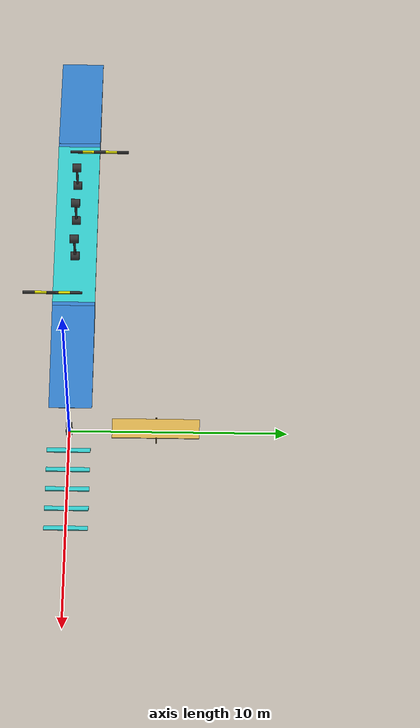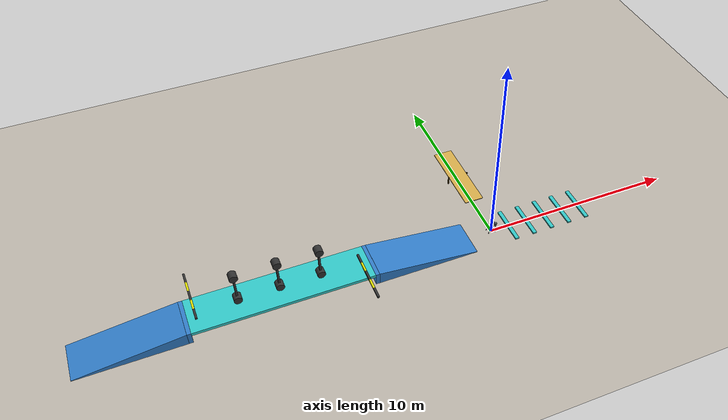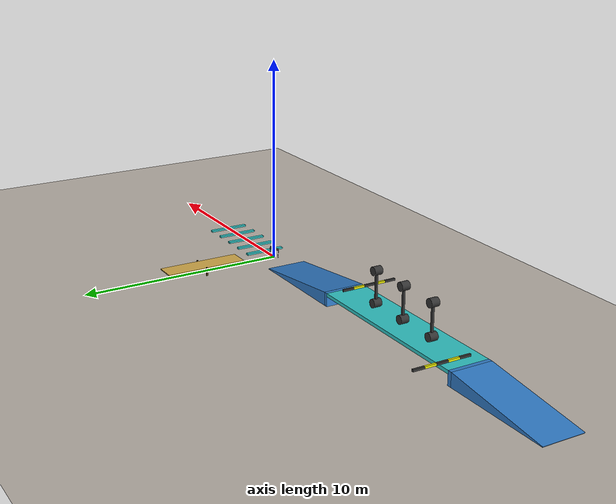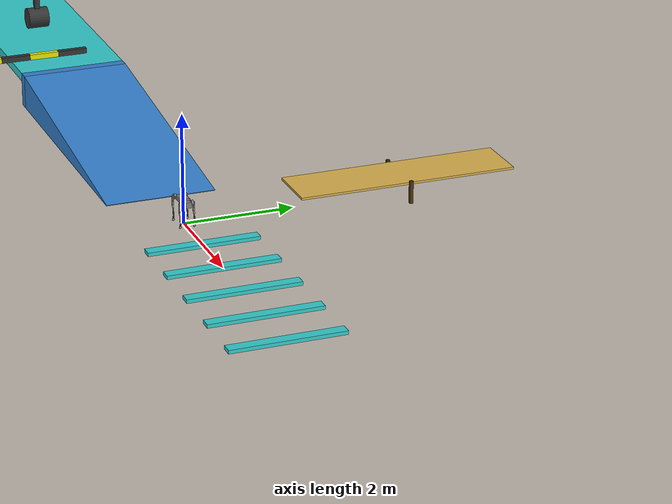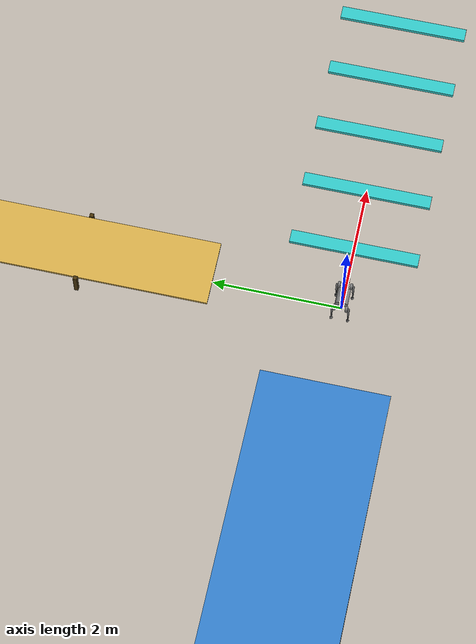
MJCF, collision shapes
<mujoco model="go1 feetonly flat terrain scene">
  <include file="go1_mjx_fullcollisions.xml"/>
  <include file="objects.xml"/>
  <option timestep="0.002"/>
  <statistic center="0 0 0.1" extent="0.8" meansize="0.04"/>

  <visual>
    <headlight diffuse="0.6 0.6 0.6" ambient="0.3 0.3 0.3" specular="0 0 0"/>
    <rgba haze="0.15 0.25 0.35 1"/>
    <global azimuth="120" elevation="-20"/>
    <map force="0.01"/>
    <scale forcewidth="0.3" contactwidth="0.5" contactheight="0.2"/>
    <quality shadowsize="2048"/>
  </visual>

  <asset>
      <texture type="skybox" builtin="gradient" rgb1="0.3 0.5 0.7" rgb2="0 0 0" width="512" height="3072"/>
      <texture name="grid" type="2d" file="../common/plane.png" width="512" height="512"/>
      <material name="grid" texture="grid" texrepeat="0.5 0.5" texuniform="true" reflectance=".2"/>
  </asset>

  <worldbody>
      <light pos="0 0 1.5" dir="0 0 -1" directional="true"/>
      <geom
        name="floor"
        size="0 0 0.01"
        type="plane"
        material="grid"
        contype="1"
        conaffinity="0"
        priority="1"
        friction="0.6"
        condim="3"
      />
  </worldbody>
</mujoco>

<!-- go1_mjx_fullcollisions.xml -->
<mujoco model="go1">
  <compiler angle="radian" autolimits="true"/>

  <option timestep="0.004" integrator="Euler" iterations="50">
    <flag eulerdamp="disable"/>
  </option>

  <custom>
    <numeric data="30" name="max_contact_points"/>
    <numeric data="12" name="max_geom_pairs"/>
  </custom>

  <default>
    <default class="go1">
      <geom condim="1"/>
      <joint axis="0 1 0" armature="0.005" damping="0.5"/>
      <position forcerange="-23.7 23.7" inheritrange="1" kp="35"/>
      <default class="abduction">
        <joint axis="1 0 0" range="-0.863 0.863" frictionloss="0.3"/>
      </default>
      <default class="hip">
        <joint range="-0.686 4.501" frictionloss="0.3"/>
      </default>
      <default class="knee">
        <joint range="-2.818 -0.888" frictionloss="1.0"/>
        <position forcerange="-35.55 35.55"/>
      </default>
      <default class="visual">
        <geom type="mesh" contype="0" conaffinity="0" group="2" material="dark"/>
      </default>
      <default class="collision">
        <geom group="3" type="capsule"/>
        <default class="hip_left1">
          <geom size="0.046 0.02" pos="0 0.045 0" quat="1 1 0 0" type="cylinder"/>
        </default>
        <default class="hip_left2">
          <geom size="0.031 0.02" pos="0 0.065 0" quat="1 1 0 0" type="cylinder"/>
        </default>
        <default class="hip_left3">
          <geom size="0.046 0.02" quat="1 1 0 0" type="cylinder"/>
        </default>
        <default class="hip_right1">
          <geom size="0.046 0.02" pos="0 -0.045 0" quat="1 1 0 0" type="cylinder"/>
        </default>
        <default class="hip_right2">
          <geom size="0.031 0.02" pos="0 -0.065 0" quat="1 1 0 0" type="cylinder"/>
        </default>
        <default class="hip_right3">
          <geom size="0.046 0.02" quat="1 1 0 0" type="cylinder"/>
        </default>
        <default class="thigh1">
          <geom size="0.015" fromto="-0.02 0 0 -0.02 0 -0.16"/>
        </default>
        <default class="thigh2">
          <geom size="0.015" fromto="0 0 0 -0.02 0 -0.1"/>
        </default>
        <default class="thigh3">
          <geom size="0.015" fromto="-0.02 0 -0.16 0 0 -0.2"/>
        </default>
        <default class="calf1">
          <geom size="0.01" fromto="0 0 0 0.02 0 -0.13"/>
        </default>
        <default class="calf2">
          <geom size="0.01" fromto="0.02 0 -0.13 0 0 -0.2"/>
        </default>
        <default class="foot">
          <geom type="sphere" size="0.023" pos="0 0 -0.213" solimp="0.9 .99 0.001" priority="10" condim="3"/>
        </default>
      </default>
    </default>
  </default>

  <asset>
    <material name="dark" rgba="0.2 0.2 0.2 1"/>
    <mesh class="go1" file="../go1/assets/trunk.stl"/>
    <mesh class="go1" file="../go1/assets/hip.stl"/>
    <mesh class="go1" file="../go1/assets/thigh_mirror.stl"/>
    <mesh class="go1" file="../go1/assets/calf.stl"/>
    <mesh class="go1" file="../go1/assets/thigh.stl"/>
  </asset>

  <worldbody>
    <light name="spotlight" mode="targetbodycom" target="trunk" pos="3 0 4"/>
    <body name="trunk" pos="0 0 0.445" childclass="go1">
      <camera name="track" pos="0.846 -1.3 0.316" xyaxes="0.866 0.500 0.000 -0.171 0.296 0.940" mode="track"/>
      <camera name="top" pos="-1 0 1" xyaxes="0 -1 0 0.7 0 0.7" mode="track"/>
      <camera name="side" pos="0 -2 1" xyaxes="1 0 0 0 1 2" mode="track"/>
      <camera name="back" pos="-2.4 0 0.8" target="trunk" mode="targetbody"/>
      <site name="head" pos="0.3 0 0" rgba="1 0 0 1" size="0.02" group="5"/>
      <inertial pos="0.0223 0.002 -0.0005" quat="-0.00342088 0.705204 0.000106698 0.708996" mass="5.204"
        diaginertia="0.0716565 0.0630105 0.0168101"/>
      <freejoint/>
      <geom class="visual" mesh="trunk"/>
      <geom class="collision" quat="1 0 0 0" pos="0.24 0 0" size="0.05 0.05 0.05" type="box"/>
      <geom class="collision" quat="1 0 1 0" pos="0 -0.04 0" size="0.058 0.125" type="cylinder"/>
      <geom class="collision" quat="1 0 1 0" pos="0 +0.04 0" size="0.058 0.125" type="cylinder"/>
      <site name="imu" pos="-0.01592 -0.06659 -0.00617" group="5"/>
      <body name="FR_hip" pos="0.1881 -0.04675 0">
        <inertial pos="-0.0049166 0.00762615 -8.865e-05" quat="0.507341 0.514169 0.495027 0.482891" mass="0.68"
          diaginertia="0.000734064 0.000468438 0.000398719"/>
        <joint class="abduction" name="FR_hip_joint"/>
        <geom class="visual" mesh="hip" quat="1 0 0 0"/>
        <geom name="fr_hip" class="hip_right1"/>
        <body name="FR_thigh" pos="0 -0.08 0">
          <inertial pos="-0.00304722 0.019315 -0.0305004" quat="0.65243 -0.0272313 0.0775126 0.753383" mass="1.009"
            diaginertia="0.00478717 0.00460903 0.000709268"/>
          <joint class="hip" name="FR_thigh_joint"/>
          <geom class="visual" mesh="thigh_mirror"/>
          <geom name="fr_thigh1" class="thigh1"/>
          <geom name="fr_thigh2" class="thigh2"/>
          <geom name="fr_thigh3" class="thigh3"/>
          <body name="FR_calf" pos="0 0 -0.213">
            <inertial pos="0.00429862 0.000976676 -0.146197" quat="0.691246 0.00357467 0.00511118 0.722592"
              mass="0.195862" diaginertia="0.00149767 0.00148468 3.58427e-05"/>
            <joint class="knee" name="FR_calf_joint"/>
            <geom class="visual" mesh="calf"/>
            <geom name="fr_calf1" class="calf1"/>
            <geom name="fr_calf2" class="calf2"/>
            <geom name="FR" class="foot"/>
            <site name="FR" pos="0 0 -0.213" type="sphere" size="0.023" group="5"/>
          </body>
        </body>
      </body>
      <body name="FL_hip" pos="0.1881 0.04675 0">
        <inertial pos="-0.0049166 -0.00762615 -8.865e-05" quat="0.482891 0.495027 0.514169 0.507341" mass="0.68"
          diaginertia="0.000734064 0.000468438 0.000398719"/>
        <joint class="abduction" name="FL_hip_joint"/>
        <geom class="visual" mesh="hip"/>
        <geom name="fl_hip" class="hip_left1"/>
        <body name="FL_thigh" pos="0 0.08 0">
          <inertial pos="-0.00304722 -0.019315 -0.0305004" quat="0.753383 0.0775126 -0.0272313 0.65243" mass="1.009"
            diaginertia="0.00478717 0.00460903 0.000709268"/>
          <joint class="hip" name="FL_thigh_joint"/>
          <geom class="visual" mesh="thigh"/>
          <geom name="fl_thigh1" class="thigh1"/>
          <geom name="fl_thigh2" class="thigh2"/>
          <geom name="fl_thigh3" class="thigh3"/>
          <body name="FL_calf" pos="0 0 -0.213">
            <inertial pos="0.00429862 0.000976676 -0.146197" quat="0.691246 0.00357467 0.00511118 0.722592"
              mass="0.195862" diaginertia="0.00149767 0.00148468 3.58427e-05"/>
            <joint class="knee" name="FL_calf_joint"/>
            <geom class="visual" mesh="calf"/>
            <geom name="fl_calf1" class="calf1"/>
            <geom name="fl_calf2" class="calf2"/>
            <geom name="FL" class="foot"/>
            <site name="FL" pos="0 0 -0.213" type="sphere" size="0.023" group="5"/>
          </body>
        </body>
      </body>
      <body name="RR_hip" pos="-0.1881 -0.04675 0">
        <inertial pos="0.0049166 0.00762615 -8.865e-05" quat="0.495027 0.482891 0.507341 0.514169" mass="0.68"
          diaginertia="0.000734064 0.000468438 0.000398719"/>
        <joint class="abduction" name="RR_hip_joint"/>
        <geom class="visual" quat="0 0 0 -1" mesh="hip"/>
        <geom name="rr_hip" class="hip_right1"/>
        <body name="RR_thigh" pos="0 -0.08 0">
          <inertial pos="-0.00304722 0.019315 -0.0305004" quat="0.65243 -0.0272313 0.0775126 0.753383" mass="1.009"
            diaginertia="0.00478717 0.00460903 0.000709268"/>
          <joint class="hip" name="RR_thigh_joint"/>
          <geom class="visual" mesh="thigh_mirror"/>
          <geom name="rr_thigh1" class="thigh1"/>
          <geom name="rr_thigh2" class="thigh2"/>
          <geom name="rr_thigh3" class="thigh3"/>
          <body name="RR_calf" pos="0 0 -0.213">
            <inertial pos="0.00429862 0.000976676 -0.146197" quat="0.691246 0.00357467 0.00511118 0.722592"
              mass="0.195862" diaginertia="0.00149767 0.00148468 3.58427e-05"/>
            <joint class="knee" name="RR_calf_joint"/>
            <geom class="visual" mesh="calf"/>
            <geom name="rr_calf1" class="calf1"/>
            <geom name="rr_calf2" class="calf2"/>
            <geom name="RR" class="foot"/>
            <site name="RR" pos="0 0 -0.213" type="sphere" size="0.023" group="5"/>
          </body>
        </body>
      </body>
      <body name="RL_hip" pos="-0.1881 0.04675 0">
        <inertial pos="0.0049166 -0.00762615 -8.865e-05" quat="0.514169 0.507341 0.482891 0.495027" mass="0.68"
          diaginertia="0.000734064 0.000468438 0.000398719"/>
        <joint class="abduction" name="RL_hip_joint"/>
        <geom class="visual" quat="0 0 1 0" mesh="hip"/>
        <geom name="rl_hip" class="hip_left1"/>
        <body name="RL_thigh" pos="0 0.08 0">
          <inertial pos="-0.00304722 -0.019315 -0.0305004" quat="0.753383 0.0775126 -0.0272313 0.65243" mass="1.009"
            diaginertia="0.00478717 0.00460903 0.000709268"/>
          <joint class="hip" name="RL_thigh_joint"/>
          <geom class="visual" mesh="thigh"/>
          <geom name="rl_thigh1" class="thigh1"/>
          <geom name="rl_thigh2" class="thigh2"/>
          <geom name="rl_thigh3" class="thigh3"/>
          <body name="RL_calf" pos="0 0 -0.213">
            <inertial pos="0.00429862 0.000976676 -0.146197" quat="0.691246 0.00357467 0.00511118 0.722592"
              mass="0.195862" diaginertia="0.00149767 0.00148468 3.58427e-05"/>
            <joint class="knee" name="RL_calf_joint"/>
            <geom class="visual" mesh="calf"/>
            <geom name="rl_calf1" class="calf1"/>
            <geom name="rl_calf2" class="calf2"/>
            <geom name="RL" class="foot"/>
            <site name="RL" pos="0 0 -0.213" type="sphere" size="0.023" group="5"/>
          </body>
        </body>
      </body>
    </body>
  </worldbody>

  <actuator>
    <position class="abduction" name="FR_hip" joint="FR_hip_joint"/>
    <position class="hip" name="FR_thigh" joint="FR_thigh_joint"/>
    <position class="knee" name="FR_calf" joint="FR_calf_joint"/>
    <position class="abduction" name="FL_hip" joint="FL_hip_joint"/>
    <position class="hip" name="FL_thigh" joint="FL_thigh_joint"/>
    <position class="knee" name="FL_calf" joint="FL_calf_joint"/>
    <position class="abduction" name="RR_hip" joint="RR_hip_joint"/>
    <position class="hip" name="RR_thigh" joint="RR_thigh_joint"/>
    <position class="knee" name="RR_calf" joint="RR_calf_joint"/>
    <position class="abduction" name="RL_hip" joint="RL_hip_joint"/>
    <position class="hip" name="RL_thigh" joint="RL_thigh_joint"/>
    <position class="knee" name="RL_calf" joint="RL_calf_joint"/>
  </actuator>

  <sensor>
    <gyro site="imu" name="gyro"/>
    <velocimeter site="imu" name="local_linvel"/>
    <framepos objtype="site" objname="imu" name="position"/>
    <framelinvel objtype="site" objname="imu" name="global_linvel"/>
    <frameangvel objtype="site" objname="imu" name="global_angvel"/>
    <framequat objtype="site" objname="imu" name="orientation"/>
    <framelinvel objtype="site" objname="FR" name="FR_global_linvel"/>
    <framelinvel objtype="site" objname="FL" name="FL_global_linvel"/>
    <framelinvel objtype="site" objname="RR" name="RR_global_linvel"/>
    <framelinvel objtype="site" objname="RL" name="RL_global_linvel"/>
    <framepos objtype="site" objname="FR" name="FR_pos" reftype="site" refname="imu"/>
    <framepos objtype="site" objname="FL" name="FL_pos" reftype="site" refname="imu"/>
    <framepos objtype="site" objname="RR" name="RR_pos" reftype="site" refname="imu"/>
    <framepos objtype="site" objname="RL" name="RL_pos" reftype="site" refname="imu"/>
    <framepos objtype="site" objname="head" name="head_pos"/>
  </sensor>
</mujoco>

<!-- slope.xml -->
<mujoco model="slope bridge">
    <worldbody>
        <geom name="slope1" type="box" size="2.6 1 0.5" pos="-3.88 0 -0.187" euler="0 0.12 0" rgba="0.2 0.5 0.8 1"/>
        <geom name="slope1_1" type="box" size="0.1 1 0.62" pos="-6.5 0 0" rgba="0.2 0.5 0.8 1"/>
        <geom name="bridge" type="box" size="4.4 1 0.08" pos="-11 0 0.54" rgba="0.2 0.8 0.8 1"/>
        <geom name="slope2_1" type="box" size="0.1 1 0.62" pos="-15.5 0 0" rgba="0.2 0.5 0.8 1"/>
        <geom name="slope2" type="box" size="2.6 1 0.5" pos="-18.12 0 -0.187" euler="0 -0.12 0" rgba="0.2 0.5 0.8 1"/>

        <body name="stick1" pos="-7 -1 0.78">
            <joint name="stick1" pos="0 0 0" axis="0 0 1"/>
            <geom type="box" size="0.05 0.28 0.05" pos="0 -1.12 0" rgba="0.2 0.2 0.2 1"/>
            <geom type="box" size="0.05 0.28 0.05" pos="0 -0.56 0" rgba="0.9 0.9 0.0 1"/>
            <geom type="box" size="0.05 0.28 0.05" rgba="0.2 0.2 0.2 1"/>
            <geom type="box" size="0.05 0.28 0.05" pos="0 0.56 0" rgba="0.9 0.9 0.0 1"/>
            <geom type="box" size="0.05 0.28 0.05" pos="0 1.12 0" rgba="0.2 0.2 0.2 1"/>
        </body>

        <body name="stick2" pos="-15 1 0.78">
            <joint name="stick2" pos="0 0 0" axis="0 0 1"/>
            <geom type="box" size="0.05 0.28 0.05" pos="0 -1.12 0" rgba="0.2 0.2 0.2 1"/>
            <geom type="box" size="0.05 0.28 0.05" pos="0 -0.56 0" rgba="0.9 0.9 0.0 1"/>
            <geom type="box" size="0.05 0.28 0.05" rgba="0.2 0.2 0.2 1"/>
            <geom type="box" size="0.05 0.28 0.05" pos="0 0.56 0" rgba="0.9 0.9 0.0 1"/>
            <geom type="box" size="0.05 0.28 0.05" pos="0 1.12 0" rgba="0.2 0.2 0.2 1"/>
        </body>

        <body name="hammer1" pos="-9 0 1.6">
            <joint name="hammer1" pos="0 0 0" axis="1 0 0"/>
            <geom type="box" size="0.05 0.05 0.8" rgba="0.2 0.2 0.2 1"/>
            <geom type="cylinder" pos="0 0 -0.75" euler="1.57 0 0" size="0.2 0.2" rgba="0.2 0.2 0.2 1"/>
            <geom type="cylinder" pos="0 0 0.75" euler="1.57 0 0" size="0.2 0.2" rgba="0.2 0.2 0.2 1"/>
        </body>

        <body name="hammer2" pos="-11 0 1.6">
            <joint name="hammer2" pos="0 0 0" axis="1 0 0"/>
            <geom type="box" size="0.05 0.05 0.8" rgba="0.2 0.2 0.2 1"/>
            <geom type="cylinder" pos="0 0 -0.75" euler="1.57 0 0" size="0.2 0.2" rgba="0.2 0.2 0.2 1"/>
            <geom type="cylinder" pos="0 0 0.75" euler="1.57 0 0" size="0.2 0.2" rgba="0.2 0.2 0.2 1"/>
        </body>

        <body name="hammer3" pos="-13 0 1.6">
            <joint name="hammer3" pos="0 0 0" axis="1 0 0"/>
            <geom type="box" size="0.05 0.05 0.8" rgba="0.2 0.2 0.2 1"/>
            <geom type="cylinder" pos="0 0 -0.75" euler="1.57 0 0" size="0.2 0.2" rgba="0.2 0.2 0.2 1"/>
            <geom type="cylinder" pos="0 0 0.75" euler="1.57 0 0" size="0.2 0.2" rgba="0.2 0.2 0.2 1"/>
        </body>
    </worldbody>
</mujoco>

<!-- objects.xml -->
<mujoco model="go1 scene objects">
  <include file="slope.xml"/>

  <worldbody>
      <body name="plate" pos="0 4 0.34729">
        <joint name="seesaw_joint" pos="0 0 0" axis="1 0 0" range="-10 10"/>
        <geom type="box" pos="0 -0.025 0" size="0.5 2 0.02" rgba="0.8588 0.6941 0.302 1"/>
      </body>
      <geom name="pillar1" type="box" size="0.03 0.03 0.4" pos="0.53 4 0" rgba="0.2941 0.2118 0.051 1"/>
      <geom name="pillar2" type="box" size="0.03 0.03 0.4" pos="-0.53 4 0" rgba="0.2941 0.2118 0.051 1"/>

      <geom name="bump1" type="box" size="0.1 1 0.05" pos="1 0 0" rgba="0.2 0.8 0.8 1"/>
      <geom name="bump2" type="box" size="0.1 1 0.05" pos="2 0 0" rgba="0.2 0.8 0.8 1"/>
      <geom name="bump3" type="box" size="0.1 1 0.05" pos="3 0 0" rgba="0.2 0.8 0.8 1"/>
      <geom name="bump4" type="box" size="0.1 1 0.05" pos="4 0 0" rgba="0.2 0.8 0.8 1"/>
      <geom name="bump5" type="box" size="0.1 1 0.05" pos="5 0 0" rgba="0.2 0.8 0.8 1"/>
  </worldbody>

  <actuator>
    <velocity name="h1" joint="hammer1" ctrlrange="-15 15" kv="10000"/>
    <velocity name="h2" joint="hammer2" ctrlrange="-15 15" kv="10000"/>
    <velocity name="h3" joint="hammer3" ctrlrange="-15 15" kv="10000"/>
    <velocity name="s1" joint="stick1" ctrlrange="-15 15" kv="100"/>
    <velocity name="s2" joint="stick2" ctrlrange="-15 15" kv="100"/>
  </actuator>
</mujoco>
